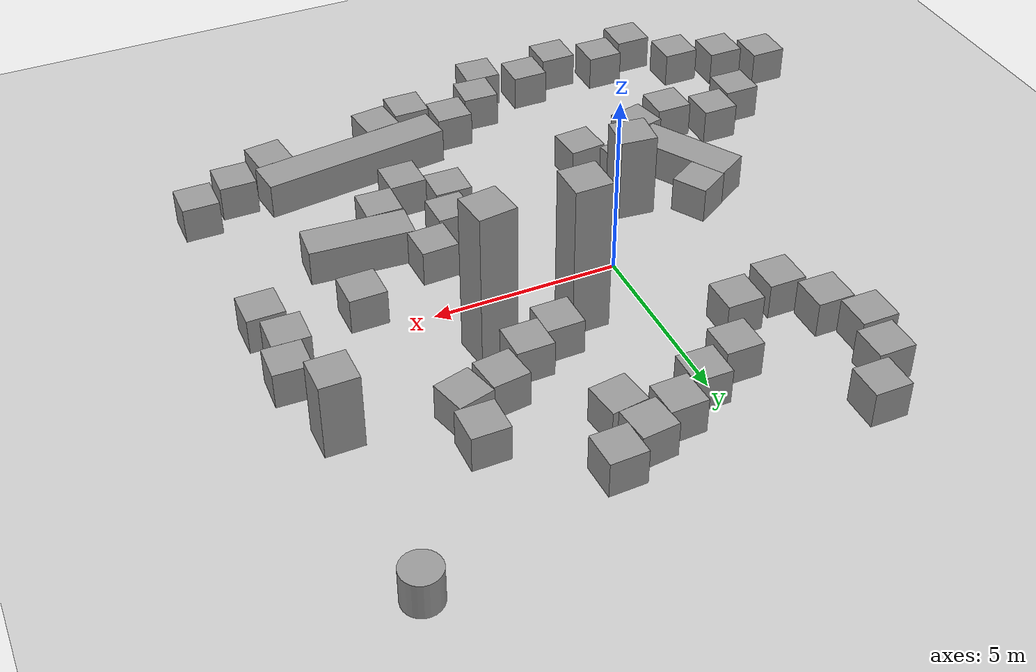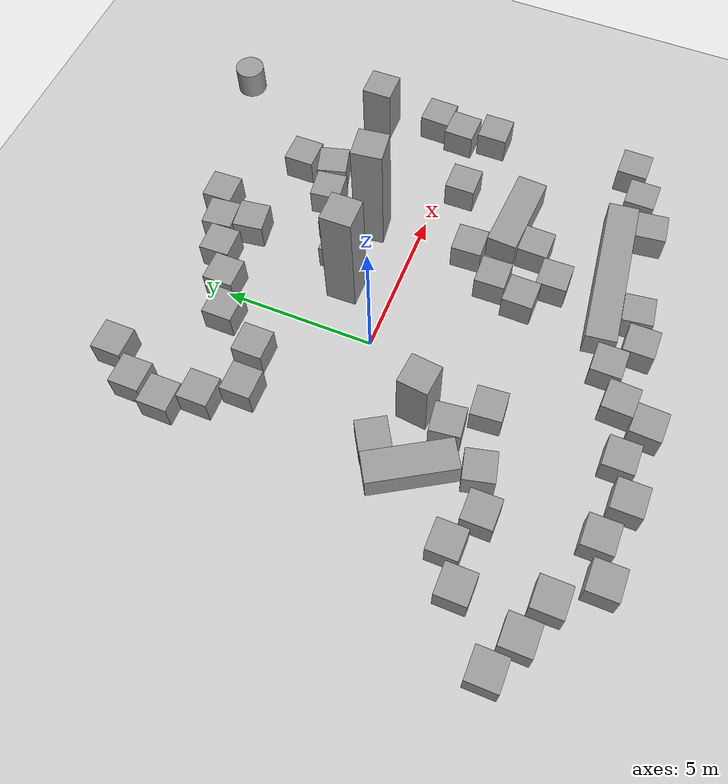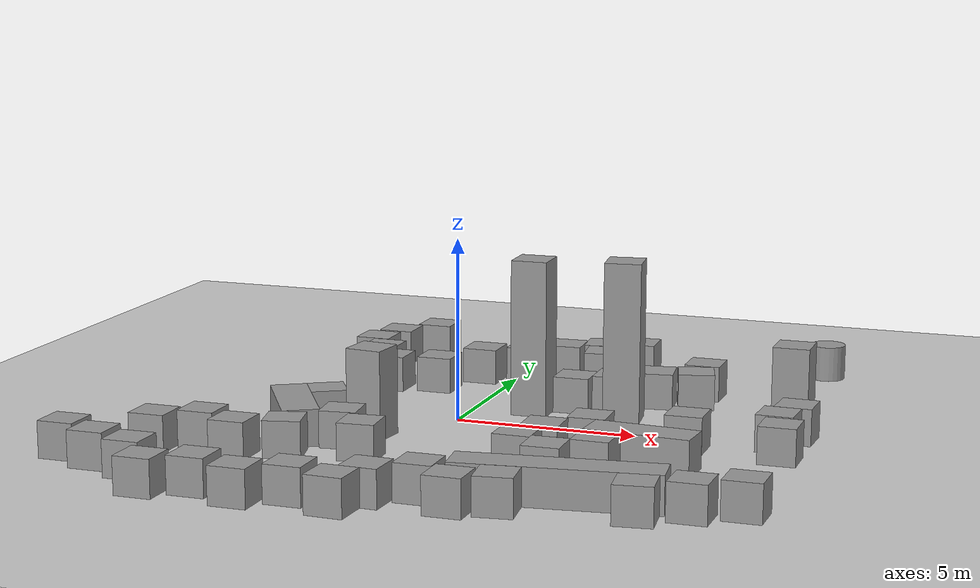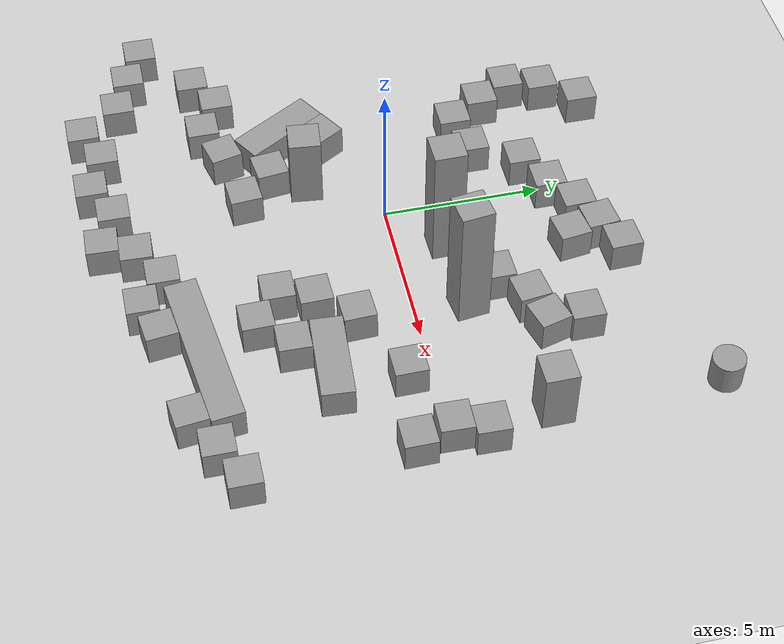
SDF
<sdf version="1.7">
 <world name="default">
  <light name="sun" type="directional">
   <pose>0 0 10 0 -0 0</pose>
   <diffuse>0.8 0.8 0.8 1</diffuse>
   <specular>0.2 0.2 0.2 1</specular>
   <attenuation>
    <range>1000</range>
    <constant>0.9</constant>
    <linear>0.01</linear>
    <quadratic>0.001</quadratic>
   </attenuation>
   <direction>-0.5 0.1 -0.9</direction>
   <spot><inner_angle>0</inner_angle><outer_angle>0</outer_angle><falloff>0</falloff></spot>
  </light>
  <model name="ground_plane">
   <static>1</static>
   <link name="link">
    <collision name="collision">
     <geometry><plane><normal>0 0 1</normal><size>100 100</size></plane></geometry>
     <surface>
      <contact><collide_bitmask>65535</collide_bitmask></contact>
      <friction><ode><mu>100</mu><mu2>50</mu2></ode></friction>
     </surface>
    </collision>
    <visual name="visual">
     <cast_shadows>0</cast_shadows>
     <geometry><plane><normal>0 0 1</normal><size>100 100</size></plane></geometry>
     <material>
      <script><uri>file://media/materials/scripts/gazebo.material</uri><name>Gazebo/Grey</name></script>
     </material>
    </visual>
   </link>
  </model>
  <gravity>0 0 -9.8</gravity>
  <magnetic_field>6e-06 2.3e-05 -4.2e-05</magnetic_field>
  <atmosphere type="adiabatic"/>
  <physics type="ode">
   <max_step_size>0.001</max_step_size>
   <real_time_factor>1</real_time_factor>
   <real_time_update_rate>1000</real_time_update_rate>
  </physics>
  <scene><ambient>0.4 0.4 0.4 1</ambient><background>0.7 0.7 0.7 1</background><shadows>1</shadows></scene>
  <audio><device>default</device></audio>
  <spherical_coordinates>
   <surface_model>EARTH_WGS84</surface_model>
   <latitude_deg>0</latitude_deg>
   <longitude_deg>0</longitude_deg>
   <elevation>0</elevation>
   <heading_deg>0</heading_deg>
  </spherical_coordinates>
  <model name="unit_cylinder">
   <pose>8.54337 8.26384 0.499997 1e-06 -0 0</pose>
   <link name="link">
    <inertial>
     <mass>1</mass>
     <inertia><ixx>0.145833</ixx><ixy>0</ixy><ixz>0</ixz><iyy>0.145833</iyy><iyz>0</iyz><izz>0.125</izz></inertia>
    </inertial>
    <collision name="collision">
     <geometry><cylinder><radius>0.5</radius><length>1</length></cylinder></geometry>
    </collision>
    <visual name="visual">
     <geometry><cylinder><radius>0.5</radius><length>1</length></cylinder></geometry>
     <material>
      <script><name>Gazebo/Grey</name><uri>file://media/materials/scripts/gazebo.material</uri></script>
     </material>
    </visual>
   </link>
  </model>
  <model name="unit_box">
   <pose>1.65646 1.52152 2.15729 0 -0 0.014901</pose>
   <link name="link">
    <inertial>
     <mass>1</mass>
     <inertia>
      <ixx>0.166667</ixx>
      <ixy>0</ixy>
      <ixz>0</ixz>
      <iyy>0.166667</iyy>
      <iyz>0</iyz>
      <izz>0.166667</izz>
     </inertia>
    </inertial>
    <collision name="collision"><geometry><box><size>1 1 4.31459</size></box></geometry></collision>
    <visual name="visual">
     <geometry><box><size>1 1 4.31459</size></box></geometry>
     <material>
      <script><name>Gazebo/Grey</name><uri>file://media/materials/scripts/gazebo.material</uri></script>
     </material>
    </visual>
   </link>
  </model>
  <model name="unit_box_0">
   <pose>0.285626 5.20852 0.499995 1e-05 -0 0</pose>
   <link name="link">
    <inertial>
     <mass>1</mass>
     <inertia>
      <ixx>0.166667</ixx>
      <ixy>0</ixy>
      <ixz>0</ixz>
      <iyy>0.166667</iyy>
      <iyz>0</iyz>
      <izz>0.166667</izz>
     </inertia>
    </inertial>
    <collision name="collision"><geometry><box><size>1 1 1</size></box></geometry></collision>
    <visual name="visual">
     <geometry><box><size>1 1 1</size></box></geometry>
     <material>
      <script><name>Gazebo/Grey</name><uri>file://media/materials/scripts/gazebo.material</uri></script>
     </material>
    </visual>
   </link>
  </model>
  <model name="unit_box_2">
   <pose>1.29469 5.85281 0.499995 0 1e-05 0.04003</pose>
   <link name="link">
    <inertial>
     <mass>1</mass>
     <inertia>
      <ixx>0.166667</ixx>
      <ixy>0</ixy>
      <ixz>0</ixz>
      <iyy>0.166667</iyy>
      <iyz>0</iyz>
      <izz>0.166667</izz>
     </inertia>
    </inertial>
    <collision name="collision"><geometry><box><size>1 1 1</size></box></geometry></collision>
    <visual name="visual">
     <geometry><box><size>1 1 1</size></box></geometry>
     <material>
      <script><name>Gazebo/Grey</name><uri>file://media/materials/scripts/gazebo.material</uri></script>
     </material>
    </visual>
   </link>
  </model>
  <model name="unit_box_3">
   <pose>2.65713 2.21025 0.499995 -0 -1e-05 0.015993</pose>
   <link name="link">
    <inertial>
     <mass>1</mass>
     <inertia>
      <ixx>0.166667</ixx>
      <ixy>0</ixy>
      <ixz>0</ixz>
      <iyy>0.166667</iyy>
      <iyz>0</iyz>
      <izz>0.166667</izz>
     </inertia>
    </inertial>
    <collision name="collision"><geometry><box><size>1 1 1</size></box></geometry></collision>
    <visual name="visual">
     <geometry><box><size>1 1 1</size></box></geometry>
     <material>
      <script><name>Gazebo/Grey</name><uri>file://media/materials/scripts/gazebo.material</uri></script>
     </material>
    </visual>
   </link>
  </model>
  <model name="unit_box_4">
   <pose>2.55964 5.30431 0.5 -2e-06 -2e-06 0.135023</pose>
   <link name="link">
    <inertial>
     <mass>1</mass>
     <inertia>
      <ixx>0.166667</ixx>
      <ixy>0</ixy>
      <ixz>0</ixz>
      <iyy>0.166667</iyy>
      <iyz>0</iyz>
      <izz>0.166667</izz>
     </inertia>
    </inertial>
    <collision name="collision"><geometry><box><size>1 1 1</size></box></geometry></collision>
    <visual name="visual">
     <geometry><box><size>1 1 1</size></box></geometry>
     <material>
      <script><name>Gazebo/Grey</name><uri>file://media/materials/scripts/gazebo.material</uri></script>
     </material>
    </visual>
   </link>
  </model>
  <model name="unit_box_5">
   <pose>3.65029 2.64736 0.499995 1e-05 -0 0.016001</pose>
   <link name="link">
    <inertial>
     <mass>1</mass>
     <inertia>
      <ixx>0.166667</ixx>
      <ixy>0</ixy>
      <ixz>0</ixz>
      <iyy>0.166667</iyy>
      <iyz>0</iyz>
      <izz>0.166667</izz>
     </inertia>
    </inertial>
    <collision name="collision"><geometry><box><size>1 1 1</size></box></geometry></collision>
    <visual name="visual">
     <geometry><box><size>1 1 1</size></box></geometry>
     <material>
      <script><name>Gazebo/Grey</name><uri>file://media/materials/scripts/gazebo.material</uri></script>
     </material>
    </visual>
   </link>
  </model>
  <model name="unit_box_7">
   <pose>-1.60446 -2.2344 1.20996 -1e-06 -1e-06 -0.105496</pose>
   <link name="link">
    <inertial>
     <mass>1</mass>
     <inertia>
      <ixx>0.166667</ixx>
      <ixy>0</ixy>
      <ixz>0</ixz>
      <iyy>0.166667</iyy>
      <iyz>0</iyz>
      <izz>0.166667</izz>
     </inertia>
    </inertial>
    <collision name="collision"><geometry><box><size>1 1 2.41993</size></box></geometry></collision>
    <visual name="visual">
     <geometry><box><size>1 1 2.41993</size></box></geometry>
     <material>
      <script><name>Gazebo/Grey</name><uri>file://media/materials/scripts/gazebo.material</uri></script>
     </material>
    </visual>
   </link>
  </model>
  <model name="unit_box_8">
   <pose>-1.06667 -4.30256 0.499999 -3e-06 -0 0.077766</pose>
   <link name="link">
    <inertial>
     <mass>1</mass>
     <inertia>
      <ixx>0.166667</ixx>
      <ixy>0</ixy>
      <ixz>0</ixz>
      <iyy>0.166667</iyy>
      <iyz>0</iyz>
      <izz>0.166667</izz>
     </inertia>
    </inertial>
    <collision name="collision"><geometry><box><size>1 1 1</size></box></geometry></collision>
    <visual name="visual">
     <geometry><box><size>1 1 1</size></box></geometry>
     <material>
      <script><name>Gazebo/Grey</name><uri>file://media/materials/scripts/gazebo.material</uri></script>
     </material>
    </visual>
   </link>
  </model>
  <model name="unit_box_9">
   <pose>4.20061 1.64038 2.19701 0 -0 0.127959</pose>
   <link name="link">
    <inertial>
     <mass>1</mass>
     <inertia>
      <ixx>0.166667</ixx>
      <ixy>0</ixy>
      <ixz>0</ixz>
      <iyy>0.166667</iyy>
      <iyz>0</iyz>
      <izz>0.166667</izz>
     </inertia>
    </inertial>
    <collision name="collision"><geometry><box><size>1 1 4.39401</size></box></geometry></collision>
    <visual name="visual">
     <geometry><box><size>1 1 4.39401</size></box></geometry>
     <material>
      <script><name>Gazebo/Grey</name><uri>file://media/materials/scripts/gazebo.material</uri></script>
     </material>
    </visual>
   </link>
  </model>
  <model name="unit_box_10">
   <pose>3.27844 6.74479 0.499995 -1e-05 -0 0.035308</pose>
   <link name="link">
    <inertial>
     <mass>1</mass>
     <inertia>
      <ixx>0.166667</ixx>
      <ixy>0</ixy>
      <ixz>0</ixz>
      <iyy>0.166667</iyy>
      <iyz>0</iyz>
      <izz>0.166667</izz>
     </inertia>
    </inertial>
    <collision name="collision"><geometry><box><size>1 1 1</size></box></geometry></collision>
    <visual name="visual">
     <geometry><box><size>1 1 1</size></box></geometry>
     <material>
      <script><name>Gazebo/Grey</name><uri>file://media/materials/scripts/gazebo.material</uri></script>
     </material>
    </visual>
   </link>
  </model>
  <model name="unit_box_11">
   <pose>5.7118 3.69971 0.499996 0 8e-06 0.268242</pose>
   <link name="link">
    <inertial>
     <mass>1</mass>
     <inertia>
      <ixx>0.166667</ixx>
      <ixy>0</ixy>
      <ixz>0</ixz>
      <iyy>0.166667</iyy>
      <iyz>0</iyz>
      <izz>0.166667</izz>
     </inertia>
    </inertial>
    <collision name="collision"><geometry><box><size>1 1 1</size></box></geometry></collision>
    <visual name="visual">
     <geometry><box><size>1 1 1</size></box></geometry>
     <material>
      <script><name>Gazebo/Grey</name><uri>file://media/materials/scripts/gazebo.material</uri></script>
     </material>
    </visual>
   </link>
  </model>
  <model name="unit_box_12">
   <pose>5.71484 4.81312 0.499995 1e-05 -0 0.00375</pose>
   <link name="link">
    <inertial>
     <mass>1</mass>
     <inertia>
      <ixx>0.166667</ixx>
      <ixy>0</ixy>
      <ixz>0</ixz>
      <iyy>0.166667</iyy>
      <iyz>0</iyz>
      <izz>0.166667</izz>
     </inertia>
    </inertial>
    <collision name="collision"><geometry><box><size>1 1 1</size></box></geometry></collision>
    <visual name="visual">
     <geometry><box><size>1 1 1</size></box></geometry>
     <material>
      <script><name>Gazebo/Grey</name><uri>file://media/materials/scripts/gazebo.material</uri></script>
     </material>
    </visual>
   </link>
  </model>
  <model name="unit_box_13">
   <pose>-0.863258 4.66574 0.499995 1e-05 -0 -5e-06</pose>
   <link name="link">
    <inertial>
     <mass>1</mass>
     <inertia>
      <ixx>0.166667</ixx>
      <ixy>0</ixy>
      <ixz>0</ixz>
      <iyy>0.166667</iyy>
      <iyz>0</iyz>
      <izz>0.166667</izz>
     </inertia>
    </inertial>
    <collision name="collision"><geometry><box><size>1 1 1</size></box></geometry></collision>
    <visual name="visual">
     <geometry><box><size>1 1 1</size></box></geometry>
     <material>
      <script><name>Gazebo/Grey</name><uri>file://media/materials/scripts/gazebo.material</uri></script>
     </material>
    </visual>
   </link>
  </model>
  <model name="unit_box_14">
   <pose>-3.62163 -2.74483 0.499976 3e-06 -1e-06 0.539227</pose>
   <link name="link">
    <inertial>
     <mass>1</mass>
     <inertia>
      <ixx>0.166667</ixx>
      <ixy>0</ixy>
      <ixz>0</ixz>
      <iyy>0.166667</iyy>
      <iyz>0</iyz>
      <izz>0.166667</izz>
     </inertia>
    </inertial>
    <collision name="collision"><geometry><box><size>1 2.84165 1</size></box></geometry></collision>
    <visual name="visual">
     <geometry><box><size>1 2.84165 1</size></box></geometry>
     <material>
      <script><name>Gazebo/Grey</name><uri>file://media/materials/scripts/gazebo.material</uri></script>
     </material>
    </visual>
   </link>
  </model>
  <model name="unit_box_15">
   <pose>-1.73854 3.20367 0.499995 0 1e-05 -5e-06</pose>
   <link name="link">
    <inertial>
     <mass>1</mass>
     <inertia>
      <ixx>0.166667</ixx>
      <ixy>0</ixy>
      <ixz>0</ixz>
      <iyy>0.166667</iyy>
      <iyz>0</iyz>
      <izz>0.166667</izz>
     </inertia>
    </inertial>
    <collision name="collision"><geometry><box><size>1 1 1</size></box></geometry></collision>
    <visual name="visual">
     <geometry><box><size>1 1 1</size></box></geometry>
     <material>
      <script><name>Gazebo/Grey</name><uri>file://media/materials/scripts/gazebo.material</uri></script>
     </material>
    </visual>
   </link>
  </model>
  <model name="unit_box_16">
   <pose>-3.07846 2.93626 0.499995 1e-05 -0 0</pose>
   <link name="link">
    <inertial>
     <mass>1</mass>
     <inertia>
      <ixx>0.166667</ixx>
      <ixy>0</ixy>
      <ixz>0</ixz>
      <iyy>0.166667</iyy>
      <iyz>0</iyz>
      <izz>0.166667</izz>
     </inertia>
    </inertial>
    <collision name="collision"><geometry><box><size>1 1 1</size></box></geometry></collision>
    <visual name="visual">
     <geometry><box><size>1 1 1</size></box></geometry>
     <material>
      <script><name>Gazebo/Grey</name><uri>file://media/materials/scripts/gazebo.material</uri></script>
     </material>
    </visual>
   </link>
  </model>
  <model name="unit_box_18">
   <pose>-3.79056 4.02265 0.499995 1e-05 -0 0</pose>
   <link name="link">
    <inertial>
     <mass>1</mass>
     <inertia>
      <ixx>0.166667</ixx>
      <ixy>0</ixy>
      <ixz>0</ixz>
      <iyy>0.166667</iyy>
      <iyz>0</iyz>
      <izz>0.166667</izz>
     </inertia>
    </inertial>
    <collision name="collision"><geometry><box><size>1 1 1</size></box></geometry></collision>
    <visual name="visual">
     <geometry><box><size>1 1 1</size></box></geometry>
     <material>
      <script><name>Gazebo/Grey</name><uri>file://media/materials/scripts/gazebo.material</uri></script>
     </material>
    </visual>
   </link>
  </model>
  <model name="unit_box_19">
   <pose>-4.3778 5.05862 0.499995 0 1e-05 -5e-06</pose>
   <link name="link">
    <inertial>
     <mass>1</mass>
     <inertia>
      <ixx>0.166667</ixx>
      <ixy>0</ixy>
      <ixz>0</ixz>
      <iyy>0.166667</iyy>
      <iyz>0</iyz>
      <izz>0.166667</izz>
     </inertia>
    </inertial>
    <collision name="collision"><geometry><box><size>1 1 1</size></box></geometry></collision>
    <visual name="visual">
     <geometry><box><size>1 1 1</size></box></geometry>
     <material>
      <script><name>Gazebo/Grey</name><uri>file://media/materials/scripts/gazebo.material</uri></script>
     </material>
    </visual>
   </link>
  </model>
  <model name="unit_box_20_clone_2">
   <pose>-4.09265 6.1759 0.499995 1e-05 -0 0</pose>
   <link name="link">
    <inertial>
     <mass>1</mass>
     <inertia>
      <ixx>0.166667</ixx>
      <ixy>0</ixy>
      <ixz>0</ixz>
      <iyy>0.166667</iyy>
      <iyz>0</iyz>
      <izz>0.166667</izz>
     </inertia>
    </inertial>
    <collision name="collision"><geometry><box><size>1 1 1</size></box></geometry></collision>
    <visual name="visual">
     <geometry><box><size>1 1 1</size></box></geometry>
     <material>
      <script><name>Gazebo/Grey</name><uri>file://media/materials/scripts/gazebo.material</uri></script>
     </material>
    </visual>
   </link>
  </model>
  <model name="unit_box_17_clone_0">
   <pose>6.60264 -0.757881 0.499995 1e-05 -0 0.011531</pose>
   <link name="link">
    <inertial>
     <mass>1</mass>
     <inertia>
      <ixx>0.166667</ixx>
      <ixy>0</ixy>
      <ixz>0</ixz>
      <iyy>0.166667</iyy>
      <iyz>0</iyz>
      <izz>0.166667</izz>
     </inertia>
    </inertial>
    <collision name="collision"><geometry><box><size>1 1 1</size></box></geometry></collision>
    <visual name="visual">
     <geometry><box><size>1 1 1</size></box></geometry>
     <material>
      <script><name>Gazebo/Grey</name><uri>file://media/materials/scripts/gazebo.material</uri></script>
     </material>
    </visual>
   </link>
  </model>
  <model name="unit_box_17_clone_1">
   <pose>8.58201 3.06203 1.05386 -2e-06 -3e-06 0.007741</pose>
   <link name="link">
    <inertial>
     <mass>1</mass>
     <inertia>
      <ixx>0.166667</ixx>
      <ixy>0</ixy>
      <ixz>0</ixz>
      <iyy>0.166667</iyy>
      <iyz>0</iyz>
      <izz>0.166667</izz>
     </inertia>
    </inertial>
    <collision name="collision"><geometry><box><size>1 1 2.10773</size></box></geometry></collision>
    <visual name="visual">
     <geometry><box><size>1 1 2.10773</size></box></geometry>
     <material>
      <script><name>Gazebo/Grey</name><uri>file://media/materials/scripts/gazebo.material</uri></script>
     </material>
    </visual>
   </link>
  </model>
  <model name="unit_box_17_clone_3">
   <pose>5.96193 -2.87187 0.5 0 0 -0.065463</pose>
   <link name="link">
    <inertial>
     <mass>1</mass>
     <inertia>
      <ixx>0.166667</ixx>
      <ixy>0</ixy>
      <ixz>0</ixz>
      <iyy>0.166667</iyy>
      <iyz>0</iyz>
      <izz>0.166667</izz>
     </inertia>
    </inertial>
    <collision name="collision"><geometry><box><size>2.81662 1 1</size></box></geometry></collision>
    <visual name="visual">
     <geometry><box><size>2.81662 1 1</size></box></geometry>
     <material>
      <script><name>Gazebo/Grey</name><uri>file://media/materials/scripts/gazebo.material</uri></script>
     </material>
    </visual>
   </link>
  </model>
  <model name="unit_box_17_clone_4">
   <pose>3.38817 -2.90848 0.499995 0 -1e-05 0.024437</pose>
   <link name="link">
    <inertial>
     <mass>1</mass>
     <inertia>
      <ixx>0.166667</ixx>
      <ixy>0</ixy>
      <ixz>0</ixz>
      <iyy>0.166667</iyy>
      <iyz>0</iyz>
      <izz>0.166667</izz>
     </inertia>
    </inertial>
    <collision name="collision"><geometry><box><size>1 1 1</size></box></geometry></collision>
    <visual name="visual">
     <geometry><box><size>1 1 1</size></box></geometry>
     <material>
      <script><name>Gazebo/Grey</name><uri>file://media/materials/scripts/gazebo.material</uri></script>
     </material>
    </visual>
   </link>
  </model>
  <model name="unit_box_17_clone_5">
   <pose>5.02854 -3.83784 0.499995 -1e-05 -0 -0.014248</pose>
   <link name="link">
    <inertial>
     <mass>1</mass>
     <inertia>
      <ixx>0.166667</ixx>
      <ixy>0</ixy>
      <ixz>0</ixz>
      <iyy>0.166667</iyy>
      <iyz>0</iyz>
      <izz>0.166667</izz>
     </inertia>
    </inertial>
    <collision name="collision"><geometry><box><size>1 1 1</size></box></geometry></collision>
    <visual name="visual">
     <geometry><box><size>1 1 1</size></box></geometry>
     <material>
      <script><name>Gazebo/Grey</name><uri>file://media/materials/scripts/gazebo.material</uri></script>
     </material>
    </visual>
   </link>
  </model>
  <model name="unit_box_17_clone_6">
   <pose>3.02281 -3.96913 0.499995 0 -1e-05 -0.008011</pose>
   <link name="link">
    <inertial>
     <mass>1</mass>
     <inertia>
      <ixx>0.166667</ixx>
      <ixy>0</ixy>
      <ixz>0</ixz>
      <iyy>0.166667</iyy>
      <iyz>0</iyz>
      <izz>0.166667</izz>
     </inertia>
    </inertial>
    <collision name="collision"><geometry><box><size>1 1 1</size></box></geometry></collision>
    <visual name="visual">
     <geometry><box><size>1 1 1</size></box></geometry>
     <material>
      <script><name>Gazebo/Grey</name><uri>file://media/materials/scripts/gazebo.material</uri></script>
     </material>
    </visual>
   </link>
  </model>
  <model name="unit_box_17_clone_7">
   <pose>4.03004 -4.77351 0.499995 1e-05 -0 0.019575</pose>
   <link name="link">
    <inertial>
     <mass>1</mass>
     <inertia>
      <ixx>0.166667</ixx>
      <ixy>0</ixy>
      <ixz>0</ixz>
      <iyy>0.166667</iyy>
      <iyz>0</iyz>
      <izz>0.166667</izz>
     </inertia>
    </inertial>
    <collision name="collision"><geometry><box><size>1 1 1</size></box></geometry></collision>
    <visual name="visual">
     <geometry><box><size>1 1 1</size></box></geometry>
     <material>
      <script><name>Gazebo/Grey</name><uri>file://media/materials/scripts/gazebo.material</uri></script>
     </material>
    </visual>
   </link>
  </model>
  <model name="unit_box_17_clone_8">
   <pose>-1.99962 -3.32055 0.499995 0 -1e-05 0.120589</pose>
   <link name="link">
    <inertial>
     <mass>1</mass>
     <inertia>
      <ixx>0.166667</ixx>
      <ixy>0</ixy>
      <ixz>0</ixz>
      <iyy>0.166667</iyy>
      <iyz>0</iyz>
      <izz>0.166667</izz>
     </inertia>
    </inertial>
    <collision name="collision"><geometry><box><size>1 1 1</size></box></geometry></collision>
    <visual name="visual">
     <geometry><box><size>1 1 1</size></box></geometry>
     <material>
      <script><name>Gazebo/Grey</name><uri>file://media/materials/scripts/gazebo.material</uri></script>
     </material>
    </visual>
   </link>
  </model>
  <model name="unit_box_17_clone_9">
   <pose>-3.02703 -4.68434 0.5 0 -0 0.231722</pose>
   <link name="link">
    <inertial>
     <mass>1</mass>
     <inertia>
      <ixx>0.166667</ixx>
      <ixy>0</ixy>
      <ixz>0</ixz>
      <iyy>0.166667</iyy>
      <iyz>0</iyz>
      <izz>0.166667</izz>
     </inertia>
    </inertial>
    <collision name="collision"><geometry><box><size>1 1 1</size></box></geometry></collision>
    <visual name="visual">
     <geometry><box><size>1 1 1</size></box></geometry>
     <material>
      <script><name>Gazebo/Grey</name><uri>file://media/materials/scripts/gazebo.material</uri></script>
     </material>
    </visual>
   </link>
  </model>
  <model name="unit_box_17_clone_10">
   <pose>-4.24894 -5.14965 0.499995 0 1e-05 -5e-06</pose>
   <link name="link">
    <inertial>
     <mass>1</mass>
     <inertia>
      <ixx>0.166667</ixx>
      <ixy>0</ixy>
      <ixz>0</ixz>
      <iyy>0.166667</iyy>
      <iyz>0</iyz>
      <izz>0.166667</izz>
     </inertia>
    </inertial>
    <collision name="collision"><geometry><box><size>1 1 1</size></box></geometry></collision>
    <visual name="visual">
     <geometry><box><size>1 1 1</size></box></geometry>
     <material>
      <script><name>Gazebo/Grey</name><uri>file://media/materials/scripts/gazebo.material</uri></script>
     </material>
    </visual>
   </link>
  </model>
  <model name="unit_box_17_clone_11">
   <pose>-5.42044 -4.54675 0.499995 1e-05 -0 -5e-06</pose>
   <link name="link">
    <inertial>
     <mass>1</mass>
     <inertia>
      <ixx>0.166667</ixx>
      <ixy>0</ixy>
      <ixz>0</ixz>
      <iyy>0.166667</iyy>
      <iyz>0</iyz>
      <izz>0.166667</izz>
     </inertia>
    </inertial>
    <collision name="collision"><geometry><box><size>1 1 1</size></box></geometry></collision>
    <visual name="visual">
     <geometry><box><size>1 1 1</size></box></geometry>
     <material>
      <script><name>Gazebo/Grey</name><uri>file://media/materials/scripts/gazebo.material</uri></script>
     </material>
    </visual>
   </link>
  </model>
  <model name="unit_box_17_clone_12">
   <pose>-6.49925 -5.19628 0.499995 0 1e-05 -5e-06</pose>
   <link name="link">
    <inertial>
     <mass>1</mass>
     <inertia>
      <ixx>0.166667</ixx>
      <ixy>0</ixy>
      <ixz>0</ixz>
      <iyy>0.166667</iyy>
      <iyz>0</iyz>
      <izz>0.166667</izz>
     </inertia>
    </inertial>
    <collision name="collision"><geometry><box><size>1 1 1</size></box></geometry></collision>
    <visual name="visual">
     <geometry><box><size>1 1 1</size></box></geometry>
     <material>
      <script><name>Gazebo/Grey</name><uri>file://media/materials/scripts/gazebo.material</uri></script>
     </material>
    </visual>
   </link>
  </model>
  <model name="unit_box_17_clone_14">
   <pose>9.35873 -6.02037 0.499995 0 1e-05 -5e-06</pose>
   <link name="link">
    <inertial>
     <mass>1</mass>
     <inertia>
      <ixx>0.166667</ixx>
      <ixy>0</ixy>
      <ixz>0</ixz>
      <iyy>0.166667</iyy>
      <iyz>0</iyz>
      <izz>0.166667</izz>
     </inertia>
    </inertial>
    <collision name="collision"><geometry><box><size>1 1 1</size></box></geometry></collision>
    <visual name="visual">
     <geometry><box><size>1 1 1</size></box></geometry>
     <material>
      <script><name>Gazebo/Grey</name><uri>file://media/materials/scripts/gazebo.material</uri></script>
     </material>
    </visual>
   </link>
  </model>
  <model name="unit_box_17_clone_15">
   <pose>8.19248 -6.56382 0.499995 1e-05 -0 -5e-06</pose>
   <link name="link">
    <inertial>
     <mass>1</mass>
     <inertia>
      <ixx>0.166667</ixx>
      <ixy>0</ixy>
      <ixz>0</ixz>
      <iyy>0.166667</iyy>
      <iyz>0</iyz>
      <izz>0.166667</izz>
     </inertia>
    </inertial>
    <collision name="collision"><geometry><box><size>1 1 1</size></box></geometry></collision>
    <visual name="visual">
     <geometry><box><size>1 1 1</size></box></geometry>
     <material>
      <script><name>Gazebo/Grey</name><uri>file://media/materials/scripts/gazebo.material</uri></script>
     </material>
    </visual>
   </link>
  </model>
  <model name="unit_box_17_clone_16">
   <pose>7.0113 -7.1988 0.5 0 -0 0.126688</pose>
   <link name="link">
    <inertial>
     <mass>1</mass>
     <inertia>
      <ixx>0.166667</ixx>
      <ixy>0</ixy>
      <ixz>0</ixz>
      <iyy>0.166667</iyy>
      <iyz>0</iyz>
      <izz>0.166667</izz>
     </inertia>
    </inertial>
    <collision name="collision"><geometry><box><size>1 1 1</size></box></geometry></collision>
    <visual name="visual">
     <geometry><box><size>1 1 1</size></box></geometry>
     <material>
      <script><name>Gazebo/Grey</name><uri>file://media/materials/scripts/gazebo.material</uri></script>
     </material>
    </visual>
   </link>
  </model>
  <model name="unit_box_17_clone_17">
   <pose>3.7538 -7.61506 0.499995 -0 -1e-05 0.126262</pose>
   <link name="link">
    <inertial>
     <mass>1</mass>
     <inertia>
      <ixx>0.166667</ixx>
      <ixy>0</ixy>
      <ixz>0</ixz>
      <iyy>0.166667</iyy>
      <iyz>0</iyz>
      <izz>0.166667</izz>
     </inertia>
    </inertial>
    <collision name="collision"><geometry><box><size>1 1 1</size></box></geometry></collision>
    <visual name="visual">
     <geometry><box><size>1 1 1</size></box></geometry>
     <material>
      <script><name>Gazebo/Grey</name><uri>file://media/materials/scripts/gazebo.material</uri></script>
     </material>
    </visual>
   </link>
  </model>
  <model name="unit_box_17_clone_18">
   <pose>2.68531 -7.98923 0.499995 -1e-05 -0 -5e-06</pose>
   <link name="link">
    <inertial>
     <mass>1</mass>
     <inertia>
      <ixx>0.166667</ixx>
      <ixy>0</ixy>
      <ixz>0</ixz>
      <iyy>0.166667</iyy>
      <iyz>0</iyz>
      <izz>0.166667</izz>
     </inertia>
    </inertial>
    <collision name="collision"><geometry><box><size>1 1 1</size></box></geometry></collision>
    <visual name="visual">
     <geometry><box><size>1 1 1</size></box></geometry>
     <material>
      <script><name>Gazebo/Grey</name><uri>file://media/materials/scripts/gazebo.material</uri></script>
     </material>
    </visual>
   </link>
  </model>
  <model name="unit_box_17_clone_19">
   <pose>1.6624 -7.24212 0.499995 1e-05 -0 -5e-06</pose>
   <link name="link">
    <inertial>
     <mass>1</mass>
     <inertia>
      <ixx>0.166667</ixx>
      <ixy>0</ixy>
      <ixz>0</ixz>
      <iyy>0.166667</iyy>
      <iyz>0</iyz>
      <izz>0.166667</izz>
     </inertia>
    </inertial>
    <collision name="collision"><geometry><box><size>1 1 1</size></box></geometry></collision>
    <visual name="visual">
     <geometry><box><size>1 1 1</size></box></geometry>
     <material>
      <script><name>Gazebo/Grey</name><uri>file://media/materials/scripts/gazebo.material</uri></script>
     </material>
    </visual>
   </link>
  </model>
  <model name="unit_box_17_clone_20">
   <pose>0.565938 -7.90615 0.499995 -1e-05 -0 -0.038335</pose>
   <link name="link">
    <inertial>
     <mass>1</mass>
     <inertia>
      <ixx>0.166667</ixx>
      <ixy>0</ixy>
      <ixz>0</ixz>
      <iyy>0.166667</iyy>
      <iyz>0</iyz>
      <izz>0.166667</izz>
     </inertia>
    </inertial>
    <collision name="collision"><geometry><box><size>1 1 1</size></box></geometry></collision>
    <visual name="visual">
     <geometry><box><size>1 1 1</size></box></geometry>
     <material>
      <script><name>Gazebo/Grey</name><uri>file://media/materials/scripts/gazebo.material</uri></script>
     </material>
    </visual>
   </link>
  </model>
  <model name="unit_box_17_clone_21">
   <pose>0.09205 -8.88926 0.499995 1e-05 -0 -0.038332</pose>
   <link name="link">
    <inertial>
     <mass>1</mass>
     <inertia>
      <ixx>0.166667</ixx>
      <ixy>0</ixy>
      <ixz>0</ixz>
      <iyy>0.166667</iyy>
      <iyz>0</iyz>
      <izz>0.166667</izz>
     </inertia>
    </inertial>
    <collision name="collision"><geometry><box><size>1 1 1</size></box></geometry></collision>
    <visual name="visual">
     <geometry><box><size>1 1 1</size></box></geometry>
     <material>
      <script><name>Gazebo/Grey</name><uri>file://media/materials/scripts/gazebo.material</uri></script>
     </material>
    </visual>
   </link>
  </model>
  <model name="unit_box_17_clone_22">
   <pose>-1.19599 -8.40129 0.499995 0 1e-05 -5e-06</pose>
   <link name="link">
    <inertial>
     <mass>1</mass>
     <inertia>
      <ixx>0.166667</ixx>
      <ixy>0</ixy>
      <ixz>0</ixz>
      <iyy>0.166667</iyy>
      <iyz>0</iyz>
      <izz>0.166667</izz>
     </inertia>
    </inertial>
    <collision name="collision"><geometry><box><size>1 1 1</size></box></geometry></collision>
    <visual name="visual">
     <geometry><box><size>1 1 1</size></box></geometry>
     <material>
      <script><name>Gazebo/Grey</name><uri>file://media/materials/scripts/gazebo.material</uri></script>
     </material>
    </visual>
   </link>
  </model>
  <model name="unit_box_17_clone_23">
   <pose>-2.37042 -8.96463 0.499995 1e-05 -0 -5e-06</pose>
   <link name="link">
    <inertial>
     <mass>1</mass>
     <inertia>
      <ixx>0.166667</ixx>
      <ixy>0</ixy>
      <ixz>0</ixz>
      <iyy>0.166667</iyy>
      <iyz>0</iyz>
      <izz>0.166667</izz>
     </inertia>
    </inertial>
    <collision name="collision"><geometry><box><size>1 1 1</size></box></geometry></collision>
    <visual name="visual">
     <geometry><box><size>1 1 1</size></box></geometry>
     <material>
      <script><name>Gazebo/Grey</name><uri>file://media/materials/scripts/gazebo.material</uri></script>
     </material>
    </visual>
   </link>
  </model>
  <model name="unit_box_17_clone_24">
   <pose>-3.70221 -8.49025 0.499995 0 1e-05 -5e-06</pose>
   <link name="link">
    <inertial>
     <mass>1</mass>
     <inertia>
      <ixx>0.166667</ixx>
      <ixy>0</ixy>
      <ixz>0</ixz>
      <iyy>0.166667</iyy>
      <iyz>0</iyz>
      <izz>0.166667</izz>
     </inertia>
    </inertial>
    <collision name="collision"><geometry><box><size>1 1 1</size></box></geometry></collision>
    <visual name="visual">
     <geometry><box><size>1 1 1</size></box></geometry>
     <material>
      <script><name>Gazebo/Grey</name><uri>file://media/materials/scripts/gazebo.material</uri></script>
     </material>
    </visual>
   </link>
  </model>
  <model name="unit_box_17_clone_25">
   <pose>-4.88425 -8.97107 0.499995 1e-05 -0 -5e-06</pose>
   <link name="link">
    <inertial>
     <mass>1</mass>
     <inertia>
      <ixx>0.166667</ixx>
      <ixy>0</ixy>
      <ixz>0</ixz>
      <iyy>0.166667</iyy>
      <iyz>0</iyz>
      <izz>0.166667</izz>
     </inertia>
    </inertial>
    <collision name="collision"><geometry><box><size>1 1 1</size></box></geometry></collision>
    <visual name="visual">
     <geometry><box><size>1 1 1</size></box></geometry>
     <material>
      <script><name>Gazebo/Grey</name><uri>file://media/materials/scripts/gazebo.material</uri></script>
     </material>
    </visual>
   </link>
  </model>
  <model name="unit_box_17_clone_26">
   <pose>-5.87305 -7.7212 0.499995 0 1e-05 -5e-06</pose>
   <link name="link">
    <inertial>
     <mass>1</mass>
     <inertia>
      <ixx>0.166667</ixx>
      <ixy>0</ixy>
      <ixz>0</ixz>
      <iyy>0.166667</iyy>
      <iyz>0</iyz>
      <izz>0.166667</izz>
     </inertia>
    </inertial>
    <collision name="collision"><geometry><box><size>1 1 1</size></box></geometry></collision>
    <visual name="visual">
     <geometry><box><size>1 1 1</size></box></geometry>
     <material>
      <script><name>Gazebo/Grey</name><uri>file://media/materials/scripts/gazebo.material</uri></script>
     </material>
    </visual>
   </link>
  </model>
  <model name="unit_box_17_clone_27">
   <pose>-7.13253 -7.24122 0.499995 0 1e-05 -5e-06</pose>
   <link name="link">
    <inertial>
     <mass>1</mass>
     <inertia>
      <ixx>0.166667</ixx>
      <ixy>0</ixy>
      <ixz>0</ixz>
      <iyy>0.166667</iyy>
      <iyz>0</iyz>
      <izz>0.166667</izz>
     </inertia>
    </inertial>
    <collision name="collision"><geometry><box><size>1 1 1</size></box></geometry></collision>
    <visual name="visual">
     <geometry><box><size>1 1 1</size></box></geometry>
     <material>
      <script><name>Gazebo/Grey</name><uri>file://media/materials/scripts/gazebo.material</uri></script>
     </material>
    </visual>
   </link>
  </model>
  <model name="unit_box_17_clone_28">
   <pose>-8.28583 -6.70445 0.499995 1e-05 -0 -5e-06</pose>
   <link name="link">
    <inertial>
     <mass>1</mass>
     <inertia>
      <ixx>0.166667</ixx>
      <ixy>0</ixy>
      <ixz>0</ixz>
      <iyy>0.166667</iyy>
      <iyz>0</iyz>
      <izz>0.166667</izz>
     </inertia>
    </inertial>
    <collision name="collision"><geometry><box><size>1 1 1</size></box></geometry></collision>
    <visual name="visual">
     <geometry><box><size>1 1 1</size></box></geometry>
     <material>
      <script><name>Gazebo/Grey</name><uri>file://media/materials/scripts/gazebo.material</uri></script>
     </material>
    </visual>
   </link>
  </model>
  <model name="unit_box_17_clone_30">
   <pose>-3.25185 7.2655 0.499995 1e-05 -0 -5e-06</pose>
   <link name="link">
    <inertial>
     <mass>1</mass>
     <inertia>
      <ixx>0.166667</ixx>
      <ixy>0</ixy>
      <ixz>0</ixz>
      <iyy>0.166667</iyy>
      <iyz>0</iyz>
      <izz>0.166667</izz>
     </inertia>
    </inertial>
    <collision name="collision"><geometry><box><size>1 1 1</size></box></geometry></collision>
    <visual name="visual">
     <geometry><box><size>1 1 1</size></box></geometry>
     <material>
      <script><name>Gazebo/Grey</name><uri>file://media/materials/scripts/gazebo.material</uri></script>
     </material>
    </visual>
   </link>
  </model>
  <model name="unit_box_17_clone_31">
   <pose>-3.24487 -1.42592 0.499995 9e-06 -1e-06 0.540294</pose>
   <link name="link">
    <inertial>
     <mass>1</mass>
     <inertia>
      <ixx>0.166667</ixx>
      <ixy>0</ixy>
      <ixz>0</ixz>
      <iyy>0.166667</iyy>
      <iyz>0</iyz>
      <izz>0.166667</izz>
     </inertia>
    </inertial>
    <collision name="collision"><geometry><box><size>1 1 1</size></box></geometry></collision>
    <visual name="visual">
     <geometry><box><size>1 1 1</size></box></geometry>
     <material>
      <script><name>Gazebo/Grey</name><uri>file://media/materials/scripts/gazebo.material</uri></script>
     </material>
    </visual>
   </link>
  </model>
  <model name="unit_box_17_clone_clone_1">
   <pose>9.09346 1.05354 0.499995 0 -1e-05 -0.027276</pose>
   <link name="link">
    <inertial>
     <mass>1</mass>
     <inertia>
      <ixx>0.166667</ixx>
      <ixy>0</ixy>
      <ixz>0</ixz>
      <iyy>0.166667</iyy>
      <iyz>0</iyz>
      <izz>0.166667</izz>
     </inertia>
    </inertial>
    <collision name="collision"><geometry><box><size>1 1 1</size></box></geometry></collision>
    <visual name="visual">
     <geometry><box><size>1 1 1</size></box></geometry>
     <material>
      <script><name>Gazebo/Grey</name><uri>file://media/materials/scripts/gazebo.material</uri></script>
     </material>
    </visual>
   </link>
  </model>
  <model name="unit_box_17_clone_clone_3">
   <pose>8.81176 0.059527 0.499995 -1e-05 -0 -0.026002</pose>
   <link name="link">
    <inertial>
     <mass>1</mass>
     <inertia>
      <ixx>0.166667</ixx>
      <ixy>0</ixy>
      <ixz>0</ixz>
      <iyy>0.166667</iyy>
      <iyz>0</iyz>
      <izz>0.166667</izz>
     </inertia>
    </inertial>
    <collision name="collision"><geometry><box><size>1 1 1</size></box></geometry></collision>
    <visual name="visual">
     <geometry><box><size>1 1 1</size></box></geometry>
     <material>
      <script><name>Gazebo/Grey</name><uri>file://media/materials/scripts/gazebo.material</uri></script>
     </material>
    </visual>
   </link>
  </model>
  <model name="unit_box_17_clone_clone_5">
   <pose>4.88873 -6.45724 0.499996 7e-06 -0 0.125227</pose>
   <link name="link">
    <inertial>
     <mass>1</mass>
     <inertia>
      <ixx>0.166667</ixx>
      <ixy>0</ixy>
      <ixz>0</ixz>
      <iyy>0.166667</iyy>
      <iyz>0</iyz>
      <izz>0.166667</izz>
     </inertia>
    </inertial>
    <collision name="collision"><geometry><box><size>5.24831 1 1</size></box></geometry></collision>
    <visual name="visual">
     <geometry><box><size>5.24831 1 1</size></box></geometry>
     <material>
      <script><name>Gazebo/Grey</name><uri>file://media/materials/scripts/gazebo.material</uri></script>
     </material>
    </visual>
   </link>
  </model>
  <model name="unit_box_17_clone_clone_6">
   <pose>4.6584 3.42467 0.5 0 -0 0.128767</pose>
   <link name="link">
    <inertial>
     <mass>1</mass>
     <inertia>
      <ixx>0.166667</ixx>
      <ixy>0</ixy>
      <ixz>0</ixz>
      <iyy>0.166667</iyy>
      <iyz>0</iyz>
      <izz>0.166667</izz>
     </inertia>
    </inertial>
    <collision name="collision"><geometry><box><size>1 1 1</size></box></geometry></collision>
    <visual name="visual">
     <geometry><box><size>1 1 1</size></box></geometry>
     <material>
      <script><name>Gazebo/Grey</name><uri>file://media/materials/scripts/gazebo.material</uri></script>
     </material>
    </visual>
   </link>
  </model>
  <model name="unit_box_17_clone_clone_7">
   <pose>2.28634 6.29115 0.499995 0 1e-05 0.105797</pose>
   <link name="link">
    <inertial>
     <mass>1</mass>
     <inertia>
      <ixx>0.166667</ixx>
      <ixy>0</ixy>
      <ixz>0</ixz>
      <iyy>0.166667</iyy>
      <iyz>0</iyz>
      <izz>0.166667</izz>
     </inertia>
    </inertial>
    <collision name="collision"><geometry><box><size>1 1 1</size></box></geometry></collision>
    <visual name="visual">
     <geometry><box><size>1 1 1</size></box></geometry>
     <material>
      <script><name>Gazebo/Grey</name><uri>file://media/materials/scripts/gazebo.material</uri></script>
     </material>
    </visual>
   </link>
  </model>
  <model name="unit_box_17_clone_clone_8">
   <pose>9.10522 -1.0579 0.499995 -1e-05 -0 0.008782</pose>
   <link name="link">
    <inertial>
     <mass>1</mass>
     <inertia>
      <ixx>0.166667</ixx>
      <ixy>0</ixy>
      <ixz>0</ixz>
      <iyy>0.166667</iyy>
      <iyz>0</iyz>
      <izz>0.166667</izz>
     </inertia>
    </inertial>
    <collision name="collision"><geometry><box><size>1 1 1</size></box></geometry></collision>
    <visual name="visual">
     <geometry><box><size>1 1 1</size></box></geometry>
     <material>
      <script><name>Gazebo/Grey</name><uri>file://media/materials/scripts/gazebo.material</uri></script>
     </material>
    </visual>
   </link>
  </model>
  <model name="unit_box_1">
   <pose>4.29891 -1.79223 0.499995 1e-05 -0 0.040719</pose>
   <link name="link">
    <inertial>
     <mass>1</mass>
     <inertia>
      <ixx>0.166667</ixx>
      <ixy>0</ixy>
      <ixz>0</ixz>
      <iyy>0.166667</iyy>
      <iyz>0</iyz>
      <izz>0.166667</izz>
     </inertia>
    </inertial>
    <collision name="collision"><geometry><box><size>1 1 1</size></box></geometry></collision>
    <visual name="visual">
     <geometry><box><size>1 1 1</size></box></geometry>
     <material>
      <script><name>Gazebo/Grey</name><uri>file://media/materials/scripts/gazebo.material</uri></script>
     </material>
    </visual>
   </link>
  </model>
 </world>
</sdf>
